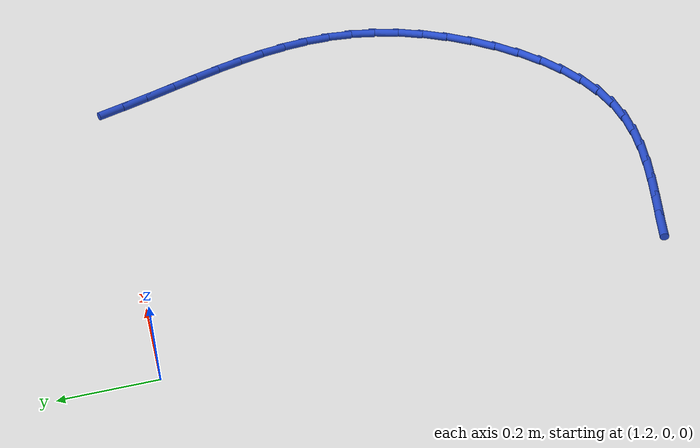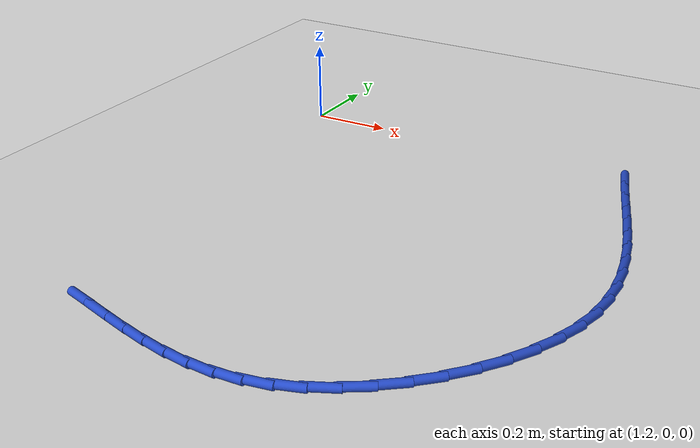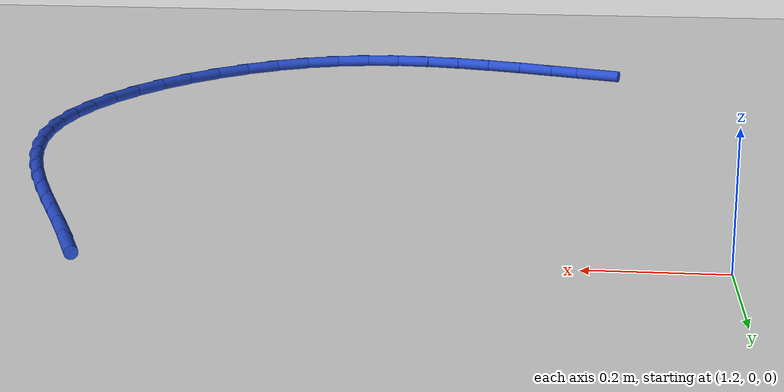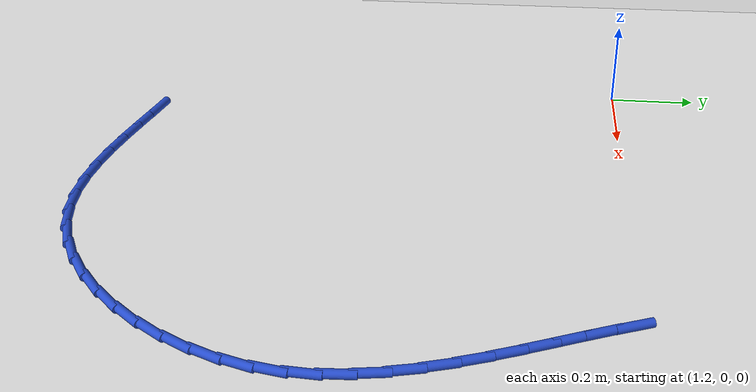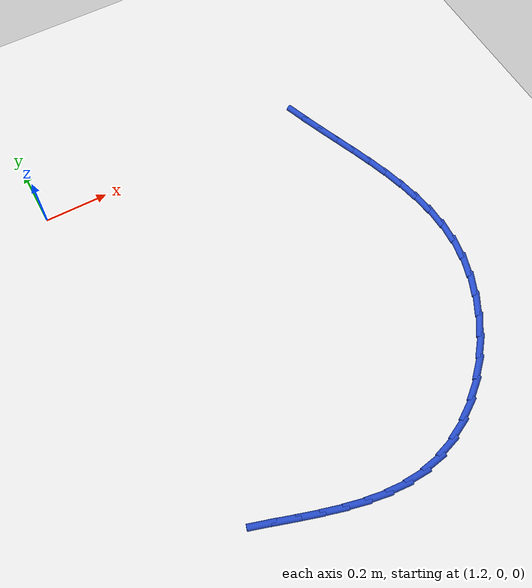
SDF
<sdf version="1.6">
 <world name="default">
  <model name="ground_plane">
   <static>1</static>
   <link name="link">
    <collision name="collision">
     <geometry><plane><normal>0 0 1</normal><size>100 100</size></plane></geometry>
     <surface><friction><ode><mu>100</mu><mu2>50</mu2></ode></friction></surface>
    </collision>
    <visual name="visual">
     <cast_shadows>0</cast_shadows>
     <geometry><plane><normal>0 0 1</normal><size>100 100</size></plane></geometry>
     <material>
      <script><uri>file://media/materials/scripts/gazebo.material</uri><name>Gazebo/WhiteGlow</name></script>
     </material>
    </visual>
   </link>
  </model>
  <model name="line">
   <link name="link_59">
    <pose>2.0965777515806674 -0.017172742816627253 0.01 0 1.57 -1.2181996951883756</pose>
    <collision name="collision">
     <geometry><cylinder><radius>0.01</radius><length>0.08</length></cylinder></geometry>
    </collision>
    <visual name="visual">
     <material>
      <script><name>Gazebo/Blue</name><uri>file://media/materials/scripts/gazebo.material</uri></script>
     </material>
     <geometry><cylinder><radius>0.01</radius><length>0.08</length></cylinder></geometry>
    </visual>
   </link>
   <link name="link_60">
    <pose>2.118757920467837 -0.0774492134464541 0.01 0 1.57 -1.197717819491666</pose>
    <collision name="collision">
     <geometry><cylinder><radius>0.01</radius><length>0.08</length></cylinder></geometry>
    </collision>
    <visual name="visual">
     <material>
      <script><name>Gazebo/Blue</name><uri>file://media/materials/scripts/gazebo.material</uri></script>
     </material>
     <geometry><cylinder><radius>0.01</radius><length>0.08</length></cylinder></geometry>
    </visual>
   </link>
   <link name="link_61">
    <pose>2.1424821809260264 -0.1380616627062813 0.01 0 1.57 -1.1910870030667329</pose>
    <collision name="collision">
     <geometry><cylinder><radius>0.01</radius><length>0.08</length></cylinder></geometry>
    </collision>
    <visual name="visual">
     <material>
      <script><name>Gazebo/Blue</name><uri>file://media/materials/scripts/gazebo.material</uri></script>
     </material>
     <geometry><cylinder><radius>0.01</radius><length>0.08</length></cylinder></geometry>
    </visual>
   </link>
   <link name="link_62">
    <pose>2.1667974463531436 -0.19899061593941092 0.01 0 1.57 -1.1978767274879256</pose>
    <collision name="collision">
     <geometry><cylinder><radius>0.01</radius><length>0.08</length></cylinder></geometry>
    </collision>
    <visual name="visual">
     <material>
      <script><name>Gazebo/Blue</name><uri>file://media/materials/scripts/gazebo.material</uri></script>
     </material>
     <geometry><cylinder><radius>0.01</radius><length>0.08</length></cylinder></geometry>
    </visual>
   </link>
   <link name="link_63">
    <pose>2.190750630147095 -0.26021659848914547 0.01 0 1.57 -1.2181092206076702</pose>
    <collision name="collision">
     <geometry><cylinder><radius>0.01</radius><length>0.08</length></cylinder></geometry>
    </collision>
    <visual name="visual">
     <material>
      <script><name>Gazebo/Blue</name><uri>file://media/materials/scripts/gazebo.material</uri></script>
     </material>
     <geometry><cylinder><radius>0.01</radius><length>0.08</length></cylinder></geometry>
    </visual>
   </link>
   <link name="link_64">
    <pose>2.2133886457057885 -0.32172013569878516 0.01 0 1.57 -1.2522177550419356</pose>
    <collision name="collision">
     <geometry><cylinder><radius>0.01</radius><length>0.08</length></cylinder></geometry>
    </collision>
    <visual name="visual">
     <material>
      <script><name>Gazebo/Blue</name><uri>file://media/materials/scripts/gazebo.material</uri></script>
     </material>
     <geometry><cylinder><radius>0.01</radius><length>0.08</length></cylinder></geometry>
    </visual>
   </link>
   <link name="link_65">
    <pose>2.233758406427132 -0.3834817529116325 0.01 0 1.57 -1.3009558375899695</pose>
    <collision name="collision">
     <geometry><cylinder><radius>0.01</radius><length>0.08</length></cylinder></geometry>
    </collision>
    <visual name="visual">
     <material>
      <script><name>Gazebo/Blue</name><uri>file://media/materials/scripts/gazebo.material</uri></script>
     </material>
     <geometry><cylinder><radius>0.01</radius><length>0.08</length></cylinder></geometry>
    </visual>
   </link>
   <link name="link_66">
    <pose>2.250906825709032 -0.44548197547099005 0.01 0 1.57 -1.3652218622225387</pose>
    <collision name="collision">
     <geometry><cylinder><radius>0.01</radius><length>0.08</length></cylinder></geometry>
    </collision>
    <visual name="visual">
     <material>
      <script><name>Gazebo/Blue</name><uri>file://media/materials/scripts/gazebo.material</uri></script>
     </material>
     <geometry><cylinder><radius>0.01</radius><length>0.08</length></cylinder></geometry>
    </visual>
   </link>
   <link name="link_67">
    <pose>2.2638808169493965 -0.5077013287201578 0.01 0 1.57 -1.4457457398925986</pose>
    <collision name="collision">
     <geometry><cylinder><radius>0.01</radius><length>0.08</length></cylinder></geometry>
    </collision>
    <visual name="visual">
     <material>
      <script><name>Gazebo/Blue</name><uri>file://media/materials/scripts/gazebo.material</uri></script>
     </material>
     <geometry><cylinder><radius>0.01</radius><length>0.08</length></cylinder></geometry>
    </visual>
   </link>
   <link name="link_68">
    <pose>2.2717272935461335 -0.5701203380024386 0.01 0 1.57 -1.5425945696948071</pose>
    <collision name="collision">
     <geometry><cylinder><radius>0.01</radius><length>0.08</length></cylinder></geometry>
    </collision>
    <visual name="visual">
     <material>
      <script><name>Gazebo/Blue</name><uri>file://media/materials/scripts/gazebo.material</uri></script>
     </material>
     <geometry><cylinder><radius>0.01</radius><length>0.08</length></cylinder></geometry>
    </visual>
   </link>
   <link name="link_69">
    <pose>2.27349316889715 -0.6327195286611338 0.01 0 1.57 1.48705665007592</pose>
    <collision name="collision">
     <geometry><cylinder><radius>0.01</radius><length>0.08</length></cylinder></geometry>
    </collision>
    <visual name="visual">
     <material>
      <script><name>Gazebo/Blue</name><uri>file://media/materials/scripts/gazebo.material</uri></script>
     </material>
     <geometry><cylinder><radius>0.01</radius><length>0.08</length></cylinder></geometry>
    </visual>
   </link>
   <link name="link_70">
    <pose>2.268225356400353 -0.6954794260395463 0.01 0 1.57 1.366305421104052</pose>
    <collision name="collision">
     <geometry><cylinder><radius>0.01</radius><length>0.08</length></cylinder></geometry>
    </collision>
    <visual name="visual">
     <material>
      <script><name>Gazebo/Blue</name><uri>file://media/materials/scripts/gazebo.material</uri></script>
     </material>
     <geometry><cylinder><radius>0.01</radius><length>0.08</length></cylinder></geometry>
    </visual>
   </link>
   <link name="link_71">
    <pose>2.2552053079553245 -0.7582599982318794 0.01 0 1.57 1.2531205999386514</pose>
    <collision name="collision">
     <geometry><cylinder><radius>0.01</radius><length>0.08</length></cylinder></geometry>
    </collision>
    <visual name="visual">
     <material>
      <script><name>Gazebo/Blue</name><uri>file://media/materials/scripts/gazebo.material</uri></script>
     </material>
     <geometry><cylinder><radius>0.01</radius><length>0.08</length></cylinder></geometry>
    </visual>
   </link>
   <link name="link_72">
    <pose>2.2347819823004635 -0.8203724945208812 0.01 0 1.57 1.149257084417992</pose>
    <collision name="collision">
     <geometry><cylinder><radius>0.01</radius><length>0.08</length></cylinder></geometry>
    </collision>
    <visual name="visual">
     <material>
      <script><name>Gazebo/Blue</name><uri>file://media/materials/scripts/gazebo.material</uri></script>
     </material>
     <geometry><cylinder><radius>0.01</radius><length>0.08</length></cylinder></geometry>
    </visual>
   </link>
   <link name="link_73">
    <pose>2.2076078911705688 -0.8809721321777549 0.01 0 1.57 1.051764262601464</pose>
    <collision name="collision">
     <geometry><cylinder><radius>0.01</radius><length>0.08</length></cylinder></geometry>
    </collision>
    <visual name="visual">
     <material>
      <script><name>Gazebo/Blue</name><uri>file://media/materials/scripts/gazebo.material</uri></script>
     </material>
     <geometry><cylinder><radius>0.01</radius><length>0.08</length></cylinder></geometry>
    </visual>
   </link>
   <link name="link_74">
    <pose>2.1743355675910405 -0.9392141175299296 0.01 0 1.57 0.9577530979082712</pose>
    <collision name="collision">
     <geometry><cylinder><radius>0.01</radius><length>0.08</length></cylinder></geometry>
    </collision>
    <visual name="visual">
     <material>
      <script><name>Gazebo/Blue</name><uri>file://media/materials/scripts/gazebo.material</uri></script>
     </material>
     <geometry><cylinder><radius>0.01</radius><length>0.08</length></cylinder></geometry>
    </visual>
   </link>
   <link name="link_75">
    <pose>2.1356175445872796 -0.9942536569048313 0.01 0 1.57 0.8643956870393646</pose>
    <collision name="collision">
     <geometry><cylinder><radius>0.01</radius><length>0.08</length></cylinder></geometry>
    </collision>
    <visual name="visual">
     <material>
      <script><name>Gazebo/Blue</name><uri>file://media/materials/scripts/gazebo.material</uri></script>
     </material>
     <geometry><cylinder><radius>0.01</radius><length>0.08</length></cylinder></geometry>
    </visual>
   </link>
   <link name="link_76">
    <pose>2.0921063551846872 -1.045245956629889 0.01 0 1.57 0.7688501082096956</pose>
    <collision name="collision">
     <geometry><cylinder><radius>0.01</radius><length>0.08</length></cylinder></geometry>
    </collision>
    <visual name="visual">
     <material>
      <script><name>Gazebo/Blue</name><uri>file://media/materials/scripts/gazebo.material</uri></script>
     </material>
     <geometry><cylinder><radius>0.01</radius><length>0.08</length></cylinder></geometry>
    </visual>
   </link>
   <link name="link_77">
    <pose>2.0444545324086643 -1.091346223032532 0.01 0 1.57 0.6681667272628694</pose>
    <collision name="collision">
     <geometry><cylinder><radius>0.01</radius><length>0.08</length></cylinder></geometry>
    </collision>
    <visual name="visual">
     <material>
      <script><name>Gazebo/Blue</name><uri>file://media/materials/scripts/gazebo.material</uri></script>
     </material>
     <geometry><cylinder><radius>0.01</radius><length>0.08</length></cylinder></geometry>
    </visual>
   </link>
   <link name="link_78">
    <pose>1.9933146092846115 -1.1317096624401874 0.01 0 1.57 0.5592270654122017</pose>
    <collision name="collision">
     <geometry><cylinder><radius>0.01</radius><length>0.08</length></cylinder></geometry>
    </collision>
    <visual name="visual">
     <material>
      <script><name>Gazebo/Blue</name><uri>file://media/materials/scripts/gazebo.material</uri></script>
     </material>
     <geometry><cylinder><radius>0.01</radius><length>0.08</length></cylinder></geometry>
    </visual>
   </link>
   <link name="link_79">
    <pose>1.9393391188379303 -1.1654914811802832 0.01 0 1.57 0.4387904313325808</pose>
    <collision name="collision">
     <geometry><cylinder><radius>0.01</radius><length>0.08</length></cylinder></geometry>
    </collision>
    <visual name="visual">
     <material>
      <script><name>Gazebo/Blue</name><uri>file://media/materials/scripts/gazebo.material</uri></script>
     </material>
     <geometry><cylinder><radius>0.01</radius><length>0.08</length></cylinder></geometry>
    </visual>
   </link>
   <link name="link_80">
    <pose>1.883180594094021 -1.1918468855802482 0.01 0 1.57 0.30377491324658995</pose>
    <collision name="collision">
     <geometry><cylinder><radius>0.01</radius><length>0.08</length></cylinder></geometry>
    </collision>
    <visual name="visual">
     <material>
      <script><name>Gazebo/Blue</name><uri>file://media/materials/scripts/gazebo.material</uri></script>
     </material>
     <geometry><cylinder><radius>0.01</radius><length>0.08</length></cylinder></geometry>
    </visual>
   </link>
   <link name="link_81">
    <pose>1.8254915680782842 -1.2099310819675102 0.01 0 1.57 0.15745487814629913</pose>
    <collision name="collision">
     <geometry><cylinder><radius>0.01</radius><length>0.08</length></cylinder></geometry>
    </collision>
    <visual name="visual">
     <material>
      <script><name>Gazebo/Blue</name><uri>file://media/materials/scripts/gazebo.material</uri></script>
     </material>
     <geometry><cylinder><radius>0.01</radius><length>0.08</length></cylinder></geometry>
    </visual>
   </link>
   <link name="link_82">
    <pose>1.766832954737919 -1.2192442585018655 0.01 0 1.57 0.023981837065901842</pose>
    <collision name="collision">
     <geometry><cylinder><radius>0.01</radius><length>0.08</length></cylinder></geometry>
    </collision>
    <visual name="visual">
     <material>
      <script><name>Gazebo/Blue</name><uri>file://media/materials/scripts/gazebo.material</uri></script>
     </material>
     <geometry><cylinder><radius>0.01</radius><length>0.08</length></cylinder></geometry>
    </visual>
   </link>
   <link name="link_83">
    <pose>1.7073983011430736 -1.2206698839968801 0.01 0 1.57 -0.08681938047710809</pose>
    <collision name="collision">
     <geometry><cylinder><radius>0.01</radius><length>0.08</length></cylinder></geometry>
    </collision>
    <visual name="visual">
     <material>
      <script><name>Gazebo/Blue</name><uri>file://media/materials/scripts/gazebo.material</uri></script>
     </material>
     <geometry><cylinder><radius>0.01</radius><length>0.08</length></cylinder></geometry>
    </visual>
   </link>
   <link name="link_84">
    <pose>1.6472890894628112 -1.2154380877968343 0.01 0 1.57 -0.1738801943650828</pose>
    <collision name="collision">
     <geometry><cylinder><radius>0.01</radius><length>0.08</length></cylinder></geometry>
    </collision>
    <visual name="visual">
     <material>
      <script><name>Gazebo/Blue</name><uri>file://media/materials/scripts/gazebo.material</uri></script>
     </material>
     <geometry><cylinder><radius>0.01</radius><length>0.08</length></cylinder></geometry>
    </visual>
   </link>
   <link name="link_85">
    <pose>1.5866068018661466 -1.2047789992461921 0.01 0 1.57 -0.23831570520197382</pose>
    <collision name="collision">
     <geometry><cylinder><radius>0.01</radius><length>0.08</length></cylinder></geometry>
    </collision>
    <visual name="visual">
     <material>
      <script><name>Gazebo/Blue</name><uri>file://media/materials/scripts/gazebo.material</uri></script>
     </material>
     <geometry><cylinder><radius>0.01</radius><length>0.08</length></cylinder></geometry>
    </visual>
   </link>
   <link name="link_86">
    <pose>1.525452920522096 -1.1899227476894174 0.01 0 1.57 -0.28197744057732144</pose>
    <collision name="collision">
     <geometry><cylinder><radius>0.01</radius><length>0.08</length></cylinder></geometry>
    </collision>
    <visual name="visual">
     <material>
      <script><name>Gazebo/Blue</name><uri>file://media/materials/scripts/gazebo.material</uri></script>
     </material>
     <geometry><cylinder><radius>0.01</radius><length>0.08</length></cylinder></geometry>
    </visual>
   </link>
   <link name="link_87">
    <pose>1.4639289275996723 -1.1720994624709735 0.01 0 1.57 -0.30656638312505124</pose>
    <collision name="collision">
     <geometry><cylinder><radius>0.01</radius><length>0.08</length></cylinder></geometry>
    </collision>
    <visual name="visual">
     <material>
      <script><name>Gazebo/Blue</name><uri>file://media/materials/scripts/gazebo.material</uri></script>
     </material>
     <geometry><cylinder><radius>0.01</radius><length>0.08</length></cylinder></geometry>
    </visual>
   </link>
   <link name="link_88">
    <pose>1.4021363052678906 -1.1525392729353243 0.01 0 1.57 -0.3132103013614437</pose>
    <collision name="collision">
     <geometry><cylinder><radius>0.01</radius><length>0.08</length></cylinder></geometry>
    </collision>
    <visual name="visual">
     <material>
      <script><name>Gazebo/Blue</name><uri>file://media/materials/scripts/gazebo.material</uri></script>
     </material>
     <geometry><cylinder><radius>0.01</radius><length>0.08</length></cylinder></geometry>
    </visual>
   </link>
   <link name="link_89">
    <pose>1.3401765356957651 -1.1324723084269332 0.01 0 1.57 -0.30231016906735725</pose>
    <collision name="collision">
     <geometry><cylinder><radius>0.01</radius><length>0.08</length></cylinder></geometry>
    </collision>
    <visual name="visual">
     <material>
      <script><name>Gazebo/Blue</name><uri>file://media/materials/scripts/gazebo.material</uri></script>
     </material>
     <geometry><cylinder><radius>0.01</radius><length>0.08</length></cylinder></geometry>
    </visual>
   </link>
  </model>
 </world>
</sdf>
